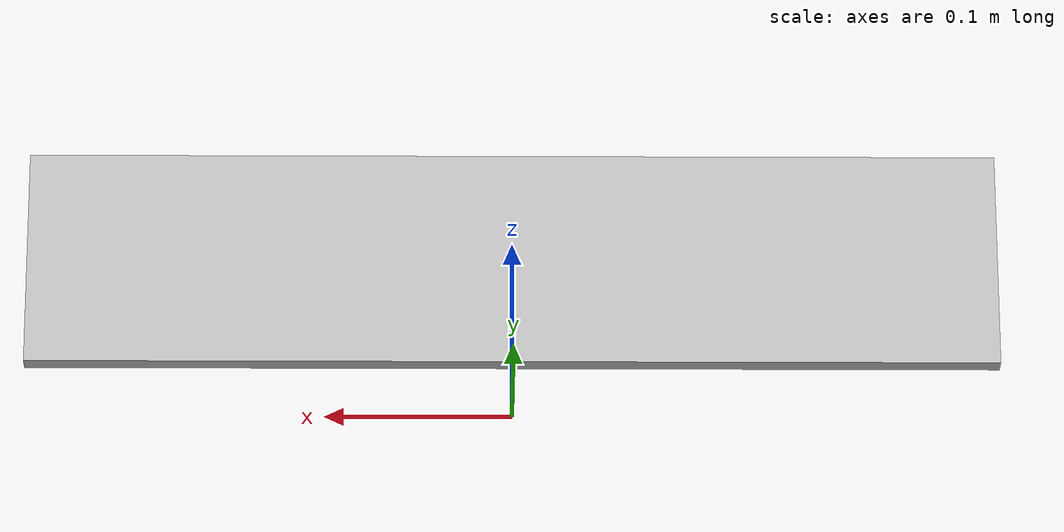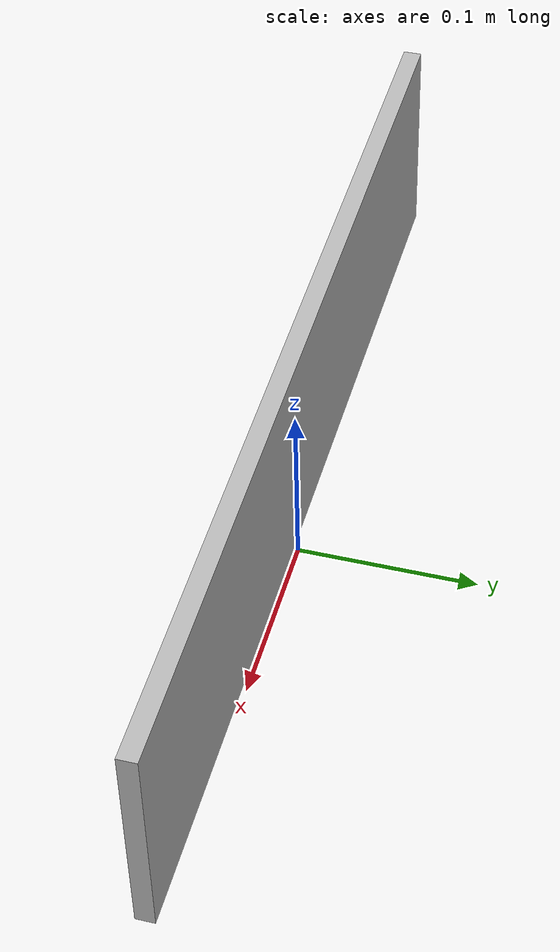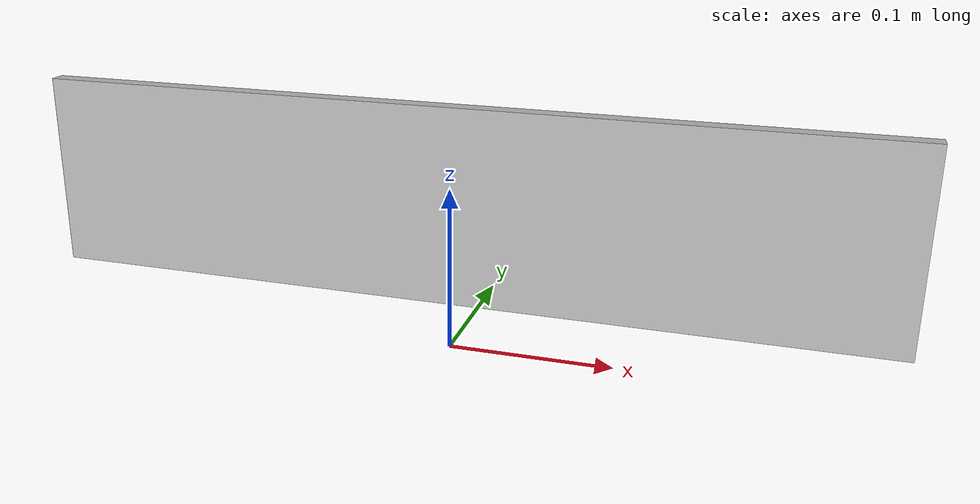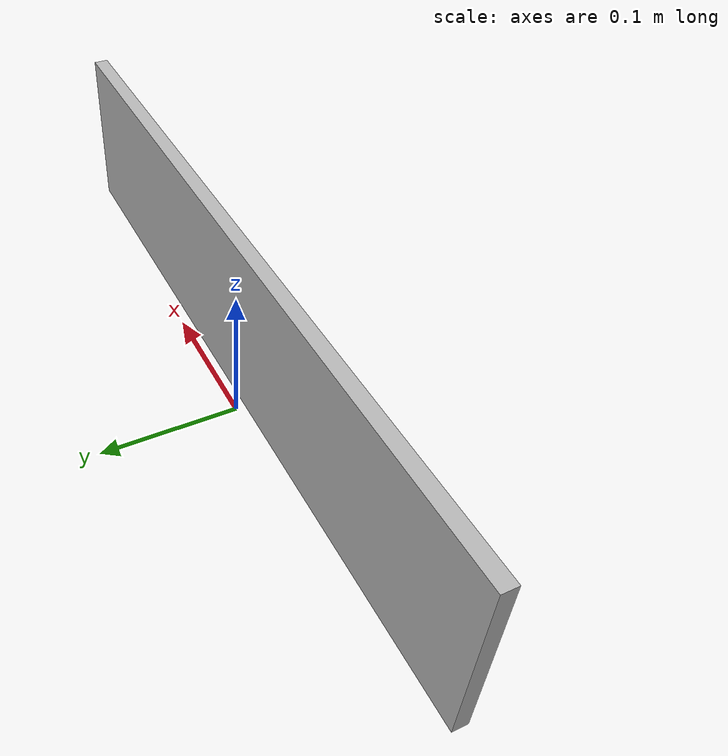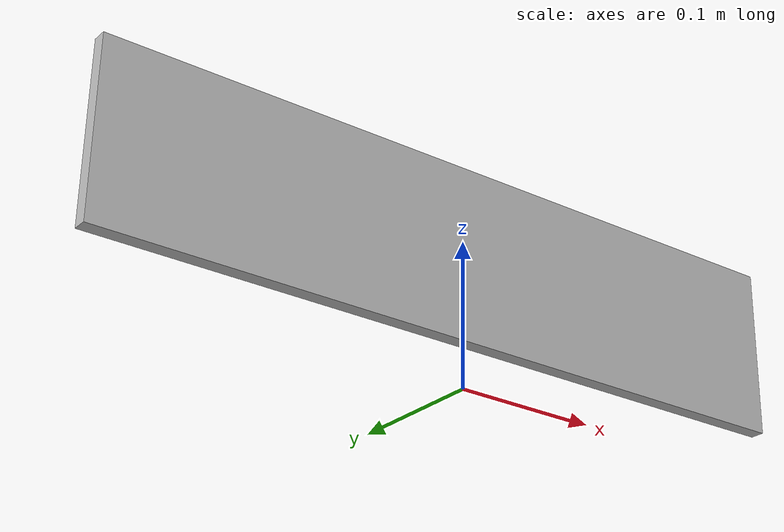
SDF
<?xml version="1.0" ?>
<sdf version="1.5">
  <model name="plaka">
    <pose>0 0 0.09  0 0 0</pose>
    <static>false</static>
    <link name="link">

      <visual name="visual">
        <geometry>
          <box>
	    <size>0.52 0.01 0.12</size>
	  </box>
	</geometry>

	<material>
	    <script>
	      <uri>model://plaka1/materials/scripts</uri>
	      <name>myplaka</name>
	    </script>
	</material>

      </visual>

      <collision name="collision">
        <geometry>
          <box>
	    <size>0.52 0.01 0.12</size>
	  </box>
	</geometry>
      </collision>

    </link>
  </model>
</sdf>
